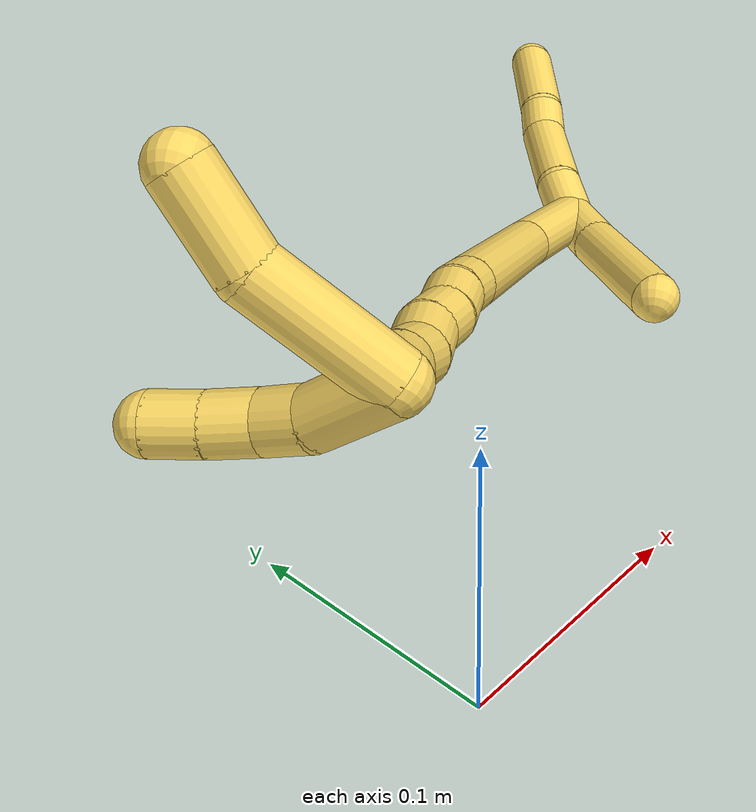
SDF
<sdf version="1.7">
 <world name="default">
  <model name="5">
   <static>0</static>
   <link name="5">
    <collision name="collision-cylinder-e_1_2_8">
     <pose>-0.004075 0.002929 0.01142 -0.251055 -0.332786 0.04238</pose>
     <geometry><cylinder><radius>0.0125</radius><length>0.024948</length></cylinder></geometry>
     <surface>
      <friction><ode><mu>1.16</mu><mu2>1.16</mu2><slip1>0</slip1><slip2>0</slip2></ode></friction>
      <contact><ode><kp>1e+06</kp><kd>1</kd><max_vel>0</max_vel><min_depth>0.001</min_depth></ode></contact>
     </surface>
    </collision>
    <visual name="visual-cylinder-e_1_2_8">
     <pose>-0.004075 0.002929 0.01142 -0.251055 -0.332786 0.04238</pose>
     <geometry><cylinder><radius>0.0125</radius><length>0.024948</length></cylinder></geometry>
     <material><ambient>1 0.858824 0.4 1</ambient></material>
    </visual>
    <collision name="collision-cylinder-e_2_8_9">
     <pose>-0.010412 0.015069 0.046278 -0.374459 -0.089606 0.016987</pose>
     <geometry><cylinder><radius>0.0125</radius><length>0.050569</length></cylinder></geometry>
     <surface>
      <friction><ode><mu>1.16</mu><mu2>1.16</mu2><slip1>0</slip1><slip2>0</slip2></ode></friction>
      <contact><ode><kp>1e+06</kp><kd>1</kd><max_vel>0</max_vel><min_depth>0.001</min_depth></ode></contact>
     </surface>
    </collision>
    <visual name="visual-cylinder-e_2_8_9">
     <pose>-0.010412 0.015069 0.046278 -0.374459 -0.089606 0.016987</pose>
     <geometry><cylinder><radius>0.0125</radius><length>0.050569</length></cylinder></geometry>
     <material><ambient>1 0.858824 0.4 1</ambient></material>
    </visual>
    <collision name="collision-cylinder-e_3_9_10">
     <pose>-0.014811 0.025063 0.079542 -0.079469 -0.213439 0.008518</pose>
     <geometry><cylinder><radius>0.0125</radius><length>0.020171</length></cylinder></geometry>
     <surface>
      <friction><ode><mu>1.16</mu><mu2>1.16</mu2><slip1>0</slip1><slip2>0</slip2></ode></friction>
      <contact><ode><kp>1e+06</kp><kd>1</kd><max_vel>0</max_vel><min_depth>0.001</min_depth></ode></contact>
     </surface>
    </collision>
    <visual name="visual-cylinder-e_3_9_10">
     <pose>-0.014811 0.025063 0.079542 -0.079469 -0.213439 0.008518</pose>
     <geometry><cylinder><radius>0.0125</radius><length>0.020171</length></cylinder></geometry>
     <material><ambient>1 0.858824 0.4 1</ambient></material>
    </visual>
    <collision name="collision-cylinder-e_4_10_6">
     <pose>-0.018999 0.0343 0.115092 -0.317541 -0.075608 0.012112</pose>
     <geometry><cylinder><radius>0.0125</radius><length>0.054312</length></cylinder></geometry>
     <surface>
      <friction><ode><mu>1.16</mu><mu2>1.16</mu2><slip1>0</slip1><slip2>0</slip2></ode></friction>
      <contact><ode><kp>1e+06</kp><kd>1</kd><max_vel>0</max_vel><min_depth>0.001</min_depth></ode></contact>
     </surface>
    </collision>
    <visual name="visual-cylinder-e_4_10_6">
     <pose>-0.018999 0.0343 0.115092 -0.317541 -0.075608 0.012112</pose>
     <geometry><cylinder><radius>0.0125</radius><length>0.054312</length></cylinder></geometry>
     <material><ambient>1 0.858824 0.4 1</ambient></material>
    </visual>
    <collision name="collision-cylinder-e_1_2_11">
     <pose>0.002988 -0.00934 -0.01261 2.5041 0.188141 0.556961</pose>
     <geometry><cylinder><radius>0.0125</radius><length>0.031948</length></cylinder></geometry>
     <surface>
      <friction><ode><mu>1.16</mu><mu2>1.16</mu2><slip1>0</slip1><slip2>0</slip2></ode></friction>
      <contact><ode><kp>1e+06</kp><kd>1</kd><max_vel>0</max_vel><min_depth>0.001</min_depth></ode></contact>
     </surface>
    </collision>
    <visual name="visual-cylinder-e_1_2_11">
     <pose>0.002988 -0.00934 -0.01261 2.5041 0.188141 0.556961</pose>
     <geometry><cylinder><radius>0.0125</radius><length>0.031948</length></cylinder></geometry>
     <material><ambient>1 0.858824 0.4 1</ambient></material>
    </visual>
    <collision name="collision-cylinder-e_2_11_5">
     <pose>0.010358 -0.040298 -0.051128 2.44621 0.129147 0.353131</pose>
     <geometry><cylinder><radius>0.0125</radius><length>0.068052</length></cylinder></geometry>
     <surface>
      <friction><ode><mu>1.16</mu><mu2>1.16</mu2><slip1>0</slip1><slip2>0</slip2></ode></friction>
      <contact><ode><kp>1e+06</kp><kd>1</kd><max_vel>0</max_vel><min_depth>0.001</min_depth></ode></contact>
     </surface>
    </collision>
    <visual name="visual-cylinder-e_2_11_5">
     <pose>0.010358 -0.040298 -0.051128 2.44621 0.129147 0.353131</pose>
     <geometry><cylinder><radius>0.0125</radius><length>0.068052</length></cylinder></geometry>
     <material><ambient>1 0.858824 0.4 1</ambient></material>
    </visual>
    <collision name="collision-cylinder-e_1_2_12">
     <pose>-0.018581 -0.009389 -0.025875 2.79351 -0.59377 -2.09836</pose>
     <geometry><cylinder><radius>0.0125</radius><length>0.066421</length></cylinder></geometry>
     <surface>
      <friction><ode><mu>1.16</mu><mu2>1.16</mu2><slip1>0</slip1><slip2>0</slip2></ode></friction>
      <contact><ode><kp>1e+06</kp><kd>1</kd><max_vel>0</max_vel><min_depth>0.001</min_depth></ode></contact>
     </surface>
    </collision>
    <visual name="visual-cylinder-e_1_2_12">
     <pose>-0.018581 -0.009389 -0.025875 2.79351 -0.59377 -2.09836</pose>
     <geometry><cylinder><radius>0.0125</radius><length>0.066421</length></cylinder></geometry>
     <material><ambient>1 0.858824 0.4 1</ambient></material>
    </visual>
    <collision name="collision-cylinder-e_2_12_13">
     <pose>-0.064494 -0.044605 -0.092433 2.57594 -0.515956 -1.47435</pose>
     <geometry><cylinder><radius>0.0125</radius><length>0.1108</length></cylinder></geometry>
     <surface>
      <friction><ode><mu>1.16</mu><mu2>1.16</mu2><slip1>0</slip1><slip2>0</slip2></ode></friction>
      <contact><ode><kp>1e+06</kp><kd>1</kd><max_vel>0</max_vel><min_depth>0.001</min_depth></ode></contact>
     </surface>
    </collision>
    <visual name="visual-cylinder-e_2_12_13">
     <pose>-0.064494 -0.044605 -0.092433 2.57594 -0.515956 -1.47435</pose>
     <geometry><cylinder><radius>0.0125</radius><length>0.1108</length></cylinder></geometry>
     <material><ambient>1 0.858824 0.4 1</ambient></material>
    </visual>
    <collision name="collision-cylinder-e_3_13_14">
     <pose>-0.096804 -0.075164 -0.140569 2.576 -0.513366 -1.46922</pose>
     <geometry><cylinder><radius>0.0125</radius><length>0.020271</length></cylinder></geometry>
     <surface>
      <friction><ode><mu>1.16</mu><mu2>1.16</mu2><slip1>0</slip1><slip2>0</slip2></ode></friction>
      <contact><ode><kp>1e+06</kp><kd>1</kd><max_vel>0</max_vel><min_depth>0.001</min_depth></ode></contact>
     </surface>
    </collision>
    <visual name="visual-cylinder-e_3_13_14">
     <pose>-0.096804 -0.075164 -0.140569 2.576 -0.513366 -1.46922</pose>
     <geometry><cylinder><radius>0.0125</radius><length>0.020271</length></cylinder></geometry>
     <material><ambient>1 0.858824 0.4 1</ambient></material>
    </visual>
    <collision name="collision-cylinder-e_4_14_15">
     <pose>-0.104903 -0.084221 -0.157046 2.69459 -0.302353 -1.1809</pose>
     <geometry><cylinder><radius>0.0125</radius><length>0.020963</length></cylinder></geometry>
     <surface>
      <friction><ode><mu>1.16</mu><mu2>1.16</mu2><slip1>0</slip1><slip2>0</slip2></ode></friction>
      <contact><ode><kp>1e+06</kp><kd>1</kd><max_vel>0</max_vel><min_depth>0.001</min_depth></ode></contact>
     </surface>
    </collision>
    <visual name="visual-cylinder-e_4_14_15">
     <pose>-0.104903 -0.084221 -0.157046 2.69459 -0.302353 -1.1809</pose>
     <geometry><cylinder><radius>0.0125</radius><length>0.020963</length></cylinder></geometry>
     <material><ambient>1 0.858824 0.4 1</ambient></material>
    </visual>
    <collision name="collision-cylinder-e_5_15_16">
     <pose>-0.113072 -0.092159 -0.173969 2.71272 -0.526418 -1.78212</pose>
     <geometry><cylinder><radius>0.0125</radius><length>0.020095</length></cylinder></geometry>
     <surface>
      <friction><ode><mu>1.16</mu><mu2>1.16</mu2><slip1>0</slip1><slip2>0</slip2></ode></friction>
      <contact><ode><kp>1e+06</kp><kd>1</kd><max_vel>0</max_vel><min_depth>0.001</min_depth></ode></contact>
     </surface>
    </collision>
    <visual name="visual-cylinder-e_5_15_16">
     <pose>-0.113072 -0.092159 -0.173969 2.71272 -0.526418 -1.78212</pose>
     <geometry><cylinder><radius>0.0125</radius><length>0.020095</length></cylinder></geometry>
     <material><ambient>1 0.858824 0.4 1</ambient></material>
    </visual>
    <collision name="collision-cylinder-e_6_16_17">
     <pose>-0.120938 -0.100377 -0.190695 2.66061 -0.275797 -1.02993</pose>
     <geometry><cylinder><radius>0.0125</radius><length>0.020692</length></cylinder></geometry>
     <surface>
      <friction><ode><mu>1.16</mu><mu2>1.16</mu2><slip1>0</slip1><slip2>0</slip2></ode></friction>
      <contact><ode><kp>1e+06</kp><kd>1</kd><max_vel>0</max_vel><min_depth>0.001</min_depth></ode></contact>
     </surface>
    </collision>
    <visual name="visual-cylinder-e_6_16_17">
     <pose>-0.120938 -0.100377 -0.190695 2.66061 -0.275797 -1.02993</pose>
     <geometry><cylinder><radius>0.0125</radius><length>0.020692</length></cylinder></geometry>
     <material><ambient>1 0.858824 0.4 1</ambient></material>
    </visual>
    <collision name="collision-cylinder-e_7_17_18">
     <pose>-0.129319 -0.110093 -0.206423 2.50428 -0.574814 -1.46121</pose>
     <geometry><cylinder><radius>0.0125</radius><length>0.020467</length></cylinder></geometry>
     <surface>
      <friction><ode><mu>1.16</mu><mu2>1.16</mu2><slip1>0</slip1><slip2>0</slip2></ode></friction>
      <contact><ode><kp>1e+06</kp><kd>1</kd><max_vel>0</max_vel><min_depth>0.001</min_depth></ode></contact>
     </surface>
    </collision>
    <visual name="visual-cylinder-e_7_17_18">
     <pose>-0.129319 -0.110093 -0.206423 2.50428 -0.574814 -1.46121</pose>
     <geometry><cylinder><radius>0.0125</radius><length>0.020467</length></cylinder></geometry>
     <material><ambient>1 0.858824 0.4 1</ambient></material>
    </visual>
    <collision name="collision-cylinder-e_8_18_1">
     <pose>-0.137337 -0.121708 -0.220716 2.41981 -0.244369 -0.629112</pose>
     <geometry><cylinder><radius>0.0125</radius><length>0.020292</length></cylinder></geometry>
     <surface>
      <friction><ode><mu>1.16</mu><mu2>1.16</mu2><slip1>0</slip1><slip2>0</slip2></ode></friction>
      <contact><ode><kp>1e+06</kp><kd>1</kd><max_vel>0</max_vel><min_depth>0.001</min_depth></ode></contact>
     </surface>
    </collision>
    <visual name="visual-cylinder-e_8_18_1">
     <pose>-0.137337 -0.121708 -0.220716 2.41981 -0.244369 -0.629112</pose>
     <geometry><cylinder><radius>0.0125</radius><length>0.020292</length></cylinder></geometry>
     <material><ambient>1 0.858824 0.4 1</ambient></material>
    </visual>
    <collision name="collision-cylinder-e_1_1_19">
     <pose>-0.169555 -0.127596 -0.221659 -0.095434 -1.35657 0.076924</pose>
     <geometry><cylinder><radius>0.0125</radius><length>0.060919</length></cylinder></geometry>
     <surface>
      <friction><ode><mu>1.16</mu><mu2>1.16</mu2><slip1>0</slip1><slip2>0</slip2></ode></friction>
      <contact><ode><kp>1e+06</kp><kd>1</kd><max_vel>0</max_vel><min_depth>0.001</min_depth></ode></contact>
     </surface>
    </collision>
    <visual name="visual-cylinder-e_1_1_19">
     <pose>-0.169555 -0.127596 -0.221659 -0.095434 -1.35657 0.076924</pose>
     <geometry><cylinder><radius>0.0125</radius><length>0.060919</length></cylinder></geometry>
     <material><ambient>1 0.858824 0.4 1</ambient></material>
    </visual>
    <collision name="collision-cylinder-e_2_19_4">
     <pose>-0.216172 -0.130039 -0.205811 0.31469 -1.04024 -0.181233</pose>
     <geometry><cylinder><radius>0.0125</radius><length>0.039081</length></cylinder></geometry>
     <surface>
      <friction><ode><mu>1.16</mu><mu2>1.16</mu2><slip1>0</slip1><slip2>0</slip2></ode></friction>
      <contact><ode><kp>1e+06</kp><kd>1</kd><max_vel>0</max_vel><min_depth>0.001</min_depth></ode></contact>
     </surface>
    </collision>
    <visual name="visual-cylinder-e_2_19_4">
     <pose>-0.216172 -0.130039 -0.205811 0.31469 -1.04024 -0.181233</pose>
     <geometry><cylinder><radius>0.0125</radius><length>0.039081</length></cylinder></geometry>
     <material><ambient>1 0.858824 0.4 1</ambient></material>
    </visual>
    <collision name="collision-cylinder-e_1_1_20">
     <pose>-0.145407 -0.110556 -0.231231 -1.74602 -0.303456 0.360738</pose>
     <geometry><cylinder><radius>0.0125</radius><length>0.037581</length></cylinder></geometry>
     <surface>
      <friction><ode><mu>1.16</mu><mu2>1.16</mu2><slip1>0</slip1><slip2>0</slip2></ode></friction>
      <contact><ode><kp>1e+06</kp><kd>1</kd><max_vel>0</max_vel><min_depth>0.001</min_depth></ode></contact>
     </surface>
    </collision>
    <visual name="visual-cylinder-e_1_1_20">
     <pose>-0.145407 -0.110556 -0.231231 -1.74602 -0.303456 0.360738</pose>
     <geometry><cylinder><radius>0.0125</radius><length>0.037581</length></cylinder></geometry>
     <material><ambient>1 0.858824 0.4 1</ambient></material>
    </visual>
    <collision name="collision-cylinder-e_2_20_21">
     <pose>-0.15628 -0.084278 -0.234404 -1.57624 -0.547721 0.550565</pose>
     <geometry><cylinder><radius>0.0125</radius><length>0.020194</length></cylinder></geometry>
     <surface>
      <friction><ode><mu>1.16</mu><mu2>1.16</mu2><slip1>0</slip1><slip2>0</slip2></ode></friction>
      <contact><ode><kp>1e+06</kp><kd>1</kd><max_vel>0</max_vel><min_depth>0.001</min_depth></ode></contact>
     </surface>
    </collision>
    <visual name="visual-cylinder-e_2_20_21">
     <pose>-0.15628 -0.084278 -0.234404 -1.57624 -0.547721 0.550565</pose>
     <geometry><cylinder><radius>0.0125</radius><length>0.020194</length></cylinder></geometry>
     <material><ambient>1 0.858824 0.4 1</ambient></material>
    </visual>
    <collision name="collision-cylinder-e_3_21_22">
     <pose>-0.169004 -0.068614 -0.235893 -1.7726 -0.804232 0.960783</pose>
     <geometry><cylinder><radius>0.0125</radius><length>0.020731</length></cylinder></geometry>
     <surface>
      <friction><ode><mu>1.16</mu><mu2>1.16</mu2><slip1>0</slip1><slip2>0</slip2></ode></friction>
      <contact><ode><kp>1e+06</kp><kd>1</kd><max_vel>0</max_vel><min_depth>0.001</min_depth></ode></contact>
     </surface>
    </collision>
    <visual name="visual-cylinder-e_3_21_22">
     <pose>-0.169004 -0.068614 -0.235893 -1.7726 -0.804232 0.960783</pose>
     <geometry><cylinder><radius>0.0125</radius><length>0.020731</length></cylinder></geometry>
     <material><ambient>1 0.858824 0.4 1</ambient></material>
    </visual>
    <collision name="collision-cylinder-e_4_22_3">
     <pose>-0.184578 -0.054611 -0.238496 -1.73629 -0.854695 0.986834</pose>
     <geometry><cylinder><radius>0.0125</radius><length>0.021493</length></cylinder></geometry>
     <surface>
      <friction><ode><mu>1.16</mu><mu2>1.16</mu2><slip1>0</slip1><slip2>0</slip2></ode></friction>
      <contact><ode><kp>1e+06</kp><kd>1</kd><max_vel>0</max_vel><min_depth>0.001</min_depth></ode></contact>
     </surface>
    </collision>
    <visual name="visual-cylinder-e_4_22_3">
     <pose>-0.184578 -0.054611 -0.238496 -1.73629 -0.854695 0.986834</pose>
     <geometry><cylinder><radius>0.0125</radius><length>0.021493</length></cylinder></geometry>
     <material><ambient>1 0.858824 0.4 1</ambient></material>
    </visual>
    <collision name="collision-sphere-3">
     <pose>-0.192685 -0.047653 -0.239658 0 -0 0</pose>
     <geometry><sphere><radius>0.0125</radius></sphere></geometry>
     <surface>
      <friction><ode><mu>1.16</mu><mu2>1.16</mu2><slip1>0</slip1><slip2>0</slip2></ode></friction>
      <contact><ode><kp>1e+06</kp><kd>1</kd><max_vel>0</max_vel><min_depth>0.001</min_depth></ode></contact>
     </surface>
    </collision>
    <visual name="visual-sphere-3">
     <pose>-0.192685 -0.047653 -0.239658 0 -0 0</pose>
     <geometry><sphere><radius>0.0125</radius></sphere></geometry>
     <material><ambient>1 0.858824 0.4 1</ambient></material>
    </visual>
    <collision name="collision-sphere-22">
     <pose>-0.176471 -0.061569 -0.237334 0 -0 0</pose>
     <geometry><sphere><radius>0.0125</radius></sphere></geometry>
     <surface>
      <friction><ode><mu>1.16</mu><mu2>1.16</mu2><slip1>0</slip1><slip2>0</slip2></ode></friction>
      <contact><ode><kp>1e+06</kp><kd>1</kd><max_vel>0</max_vel><min_depth>0.001</min_depth></ode></contact>
     </surface>
    </collision>
    <visual name="visual-sphere-22">
     <pose>-0.176471 -0.061569 -0.237334 0 -0 0</pose>
     <geometry><sphere><radius>0.0125</radius></sphere></geometry>
     <material><ambient>1 0.858824 0.4 1</ambient></material>
    </visual>
    <collision name="collision-sphere-21">
     <pose>-0.161538 -0.075658 -0.234451 0 -0 0</pose>
     <geometry><sphere><radius>0.0125</radius></sphere></geometry>
     <surface>
      <friction><ode><mu>1.16</mu><mu2>1.16</mu2><slip1>0</slip1><slip2>0</slip2></ode></friction>
      <contact><ode><kp>1e+06</kp><kd>1</kd><max_vel>0</max_vel><min_depth>0.001</min_depth></ode></contact>
     </surface>
    </collision>
    <visual name="visual-sphere-21">
     <pose>-0.161538 -0.075658 -0.234451 0 -0 0</pose>
     <geometry><sphere><radius>0.0125</radius></sphere></geometry>
     <material><ambient>1 0.858824 0.4 1</ambient></material>
    </visual>
    <collision name="collision-sphere-20">
     <pose>-0.151022 -0.092898 -0.234357 0 -0 0</pose>
     <geometry><sphere><radius>0.0125</radius></sphere></geometry>
     <surface>
      <friction><ode><mu>1.16</mu><mu2>1.16</mu2><slip1>0</slip1><slip2>0</slip2></ode></friction>
      <contact><ode><kp>1e+06</kp><kd>1</kd><max_vel>0</max_vel><min_depth>0.001</min_depth></ode></contact>
     </surface>
    </collision>
    <visual name="visual-sphere-20">
     <pose>-0.151022 -0.092898 -0.234357 0 -0 0</pose>
     <geometry><sphere><radius>0.0125</radius></sphere></geometry>
     <material><ambient>1 0.858824 0.4 1</ambient></material>
    </visual>
    <collision name="collision-sphere-4">
     <pose>-0.233027 -0.1331 -0.196409 0 -0 0</pose>
     <geometry><sphere><radius>0.0125</radius></sphere></geometry>
     <surface>
      <friction><ode><mu>1.16</mu><mu2>1.16</mu2><slip1>0</slip1><slip2>0</slip2></ode></friction>
      <contact><ode><kp>1e+06</kp><kd>1</kd><max_vel>0</max_vel><min_depth>0.001</min_depth></ode></contact>
     </surface>
    </collision>
    <visual name="visual-sphere-4">
     <pose>-0.233027 -0.1331 -0.196409 0 -0 0</pose>
     <geometry><sphere><radius>0.0125</radius></sphere></geometry>
     <material><ambient>1 0.858824 0.4 1</ambient></material>
    </visual>
    <collision name="collision-sphere-11">
     <pose>0.005975 -0.018679 -0.02522 0 -0 0</pose>
     <geometry><sphere><radius>0.0125</radius></sphere></geometry>
     <surface>
      <friction><ode><mu>1.16</mu><mu2>1.16</mu2><slip1>0</slip1><slip2>0</slip2></ode></friction>
      <contact><ode><kp>1e+06</kp><kd>1</kd><max_vel>0</max_vel><min_depth>0.001</min_depth></ode></contact>
     </surface>
    </collision>
    <visual name="visual-sphere-11">
     <pose>0.005975 -0.018679 -0.02522 0 -0 0</pose>
     <geometry><sphere><radius>0.0125</radius></sphere></geometry>
     <material><ambient>1 0.858824 0.4 1</ambient></material>
    </visual>
    <collision name="collision-sphere-6">
     <pose>-0.02105 0.042754 0.140816 0 -0 0</pose>
     <geometry><sphere><radius>0.0125</radius></sphere></geometry>
     <surface>
      <friction><ode><mu>1.16</mu><mu2>1.16</mu2><slip1>0</slip1><slip2>0</slip2></ode></friction>
      <contact><ode><kp>1e+06</kp><kd>1</kd><max_vel>0</max_vel><min_depth>0.001</min_depth></ode></contact>
     </surface>
    </collision>
    <visual name="visual-sphere-6">
     <pose>-0.02105 0.042754 0.140816 0 -0 0</pose>
     <geometry><sphere><radius>0.0125</radius></sphere></geometry>
     <material><ambient>1 0.858824 0.4 1</ambient></material>
    </visual>
    <collision name="collision-sphere-10">
     <pose>-0.016948 0.025845 0.089367 0 -0 0</pose>
     <geometry><sphere><radius>0.0125</radius></sphere></geometry>
     <surface>
      <friction><ode><mu>1.16</mu><mu2>1.16</mu2><slip1>0</slip1><slip2>0</slip2></ode></friction>
      <contact><ode><kp>1e+06</kp><kd>1</kd><max_vel>0</max_vel><min_depth>0.001</min_depth></ode></contact>
     </surface>
    </collision>
    <visual name="visual-sphere-10">
     <pose>-0.016948 0.025845 0.089367 0 -0 0</pose>
     <geometry><sphere><radius>0.0125</radius></sphere></geometry>
     <material><ambient>1 0.858824 0.4 1</ambient></material>
    </visual>
    <collision name="collision-sphere-9">
     <pose>-0.012675 0.02428 0.069716 0 -0 0</pose>
     <geometry><sphere><radius>0.0125</radius></sphere></geometry>
     <surface>
      <friction><ode><mu>1.16</mu><mu2>1.16</mu2><slip1>0</slip1><slip2>0</slip2></ode></friction>
      <contact><ode><kp>1e+06</kp><kd>1</kd><max_vel>0</max_vel><min_depth>0.001</min_depth></ode></contact>
     </surface>
    </collision>
    <visual name="visual-sphere-9">
     <pose>-0.012675 0.02428 0.069716 0 -0 0</pose>
     <geometry><sphere><radius>0.0125</radius></sphere></geometry>
     <material><ambient>1 0.858824 0.4 1</ambient></material>
    </visual>
    <collision name="collision-sphere-2">
     <geometry><sphere><radius>0.0125</radius></sphere></geometry>
     <surface>
      <friction><ode><mu>1.16</mu><mu2>1.16</mu2><slip1>0</slip1><slip2>0</slip2></ode></friction>
      <contact><ode><kp>1e+06</kp><kd>1</kd><max_vel>0</max_vel><min_depth>0.001</min_depth></ode></contact>
     </surface>
    </collision>
    <visual name="visual-sphere-2">
     <geometry><sphere><radius>0.0125</radius></sphere></geometry>
     <material><ambient>1 0.858824 0.4 1</ambient></material>
    </visual>
    <collision name="collision-sphere-19">
     <pose>-0.199318 -0.126979 -0.215213 0 -0 0</pose>
     <geometry><sphere><radius>0.0125</radius></sphere></geometry>
     <surface>
      <friction><ode><mu>1.16</mu><mu2>1.16</mu2><slip1>0</slip1><slip2>0</slip2></ode></friction>
      <contact><ode><kp>1e+06</kp><kd>1</kd><max_vel>0</max_vel><min_depth>0.001</min_depth></ode></contact>
     </surface>
    </collision>
    <visual name="visual-sphere-19">
     <pose>-0.199318 -0.126979 -0.215213 0 -0 0</pose>
     <geometry><sphere><radius>0.0125</radius></sphere></geometry>
     <material><ambient>1 0.858824 0.4 1</ambient></material>
    </visual>
    <collision name="collision-sphere-8">
     <pose>-0.00815 0.005858 0.02284 0 -0 0</pose>
     <geometry><sphere><radius>0.0125</radius></sphere></geometry>
     <surface>
      <friction><ode><mu>1.16</mu><mu2>1.16</mu2><slip1>0</slip1><slip2>0</slip2></ode></friction>
      <contact><ode><kp>1e+06</kp><kd>1</kd><max_vel>0</max_vel><min_depth>0.001</min_depth></ode></contact>
     </surface>
    </collision>
    <visual name="visual-sphere-8">
     <pose>-0.00815 0.005858 0.02284 0 -0 0</pose>
     <geometry><sphere><radius>0.0125</radius></sphere></geometry>
     <material><ambient>1 0.858824 0.4 1</ambient></material>
    </visual>
    <collision name="collision-sphere-5">
     <pose>0.01474 -0.061916 -0.077036 0 -0 0</pose>
     <geometry><sphere><radius>0.0125</radius></sphere></geometry>
     <surface>
      <friction><ode><mu>1.16</mu><mu2>1.16</mu2><slip1>0</slip1><slip2>0</slip2></ode></friction>
      <contact><ode><kp>1e+06</kp><kd>1</kd><max_vel>0</max_vel><min_depth>0.001</min_depth></ode></contact>
     </surface>
    </collision>
    <visual name="visual-sphere-5">
     <pose>0.01474 -0.061916 -0.077036 0 -0 0</pose>
     <geometry><sphere><radius>0.0125</radius></sphere></geometry>
     <material><ambient>1 0.858824 0.4 1</ambient></material>
    </visual>
    <collision name="collision-sphere-12">
     <pose>-0.037162 -0.018778 -0.051751 0 -0 0</pose>
     <geometry><sphere><radius>0.0125</radius></sphere></geometry>
     <surface>
      <friction><ode><mu>1.16</mu><mu2>1.16</mu2><slip1>0</slip1><slip2>0</slip2></ode></friction>
      <contact><ode><kp>1e+06</kp><kd>1</kd><max_vel>0</max_vel><min_depth>0.001</min_depth></ode></contact>
     </surface>
    </collision>
    <visual name="visual-sphere-12">
     <pose>-0.037162 -0.018778 -0.051751 0 -0 0</pose>
     <geometry><sphere><radius>0.0125</radius></sphere></geometry>
     <material><ambient>1 0.858824 0.4 1</ambient></material>
    </visual>
    <collision name="collision-sphere-13">
     <pose>-0.091827 -0.070432 -0.133115 0 -0 0</pose>
     <geometry><sphere><radius>0.0125</radius></sphere></geometry>
     <surface>
      <friction><ode><mu>1.16</mu><mu2>1.16</mu2><slip1>0</slip1><slip2>0</slip2></ode></friction>
      <contact><ode><kp>1e+06</kp><kd>1</kd><max_vel>0</max_vel><min_depth>0.001</min_depth></ode></contact>
     </surface>
    </collision>
    <visual name="visual-sphere-13">
     <pose>-0.091827 -0.070432 -0.133115 0 -0 0</pose>
     <geometry><sphere><radius>0.0125</radius></sphere></geometry>
     <material><ambient>1 0.858824 0.4 1</ambient></material>
    </visual>
    <collision name="collision-sphere-14">
     <pose>-0.101782 -0.079896 -0.148023 0 -0 0</pose>
     <geometry><sphere><radius>0.0125</radius></sphere></geometry>
     <surface>
      <friction><ode><mu>1.16</mu><mu2>1.16</mu2><slip1>0</slip1><slip2>0</slip2></ode></friction>
      <contact><ode><kp>1e+06</kp><kd>1</kd><max_vel>0</max_vel><min_depth>0.001</min_depth></ode></contact>
     </surface>
    </collision>
    <visual name="visual-sphere-14">
     <pose>-0.101782 -0.079896 -0.148023 0 -0 0</pose>
     <geometry><sphere><radius>0.0125</radius></sphere></geometry>
     <material><ambient>1 0.858824 0.4 1</ambient></material>
    </visual>
    <collision name="collision-sphere-15">
     <pose>-0.108024 -0.088546 -0.166069 0 -0 0</pose>
     <geometry><sphere><radius>0.0125</radius></sphere></geometry>
     <surface>
      <friction><ode><mu>1.16</mu><mu2>1.16</mu2><slip1>0</slip1><slip2>0</slip2></ode></friction>
      <contact><ode><kp>1e+06</kp><kd>1</kd><max_vel>0</max_vel><min_depth>0.001</min_depth></ode></contact>
     </surface>
    </collision>
    <visual name="visual-sphere-15">
     <pose>-0.108024 -0.088546 -0.166069 0 -0 0</pose>
     <geometry><sphere><radius>0.0125</radius></sphere></geometry>
     <material><ambient>1 0.858824 0.4 1</ambient></material>
    </visual>
    <collision name="collision-sphere-16">
     <pose>-0.118121 -0.095771 -0.18187 0 -0 0</pose>
     <geometry><sphere><radius>0.0125</radius></sphere></geometry>
     <surface>
      <friction><ode><mu>1.16</mu><mu2>1.16</mu2><slip1>0</slip1><slip2>0</slip2></ode></friction>
      <contact><ode><kp>1e+06</kp><kd>1</kd><max_vel>0</max_vel><min_depth>0.001</min_depth></ode></contact>
     </surface>
    </collision>
    <visual name="visual-sphere-16">
     <pose>-0.118121 -0.095771 -0.18187 0 -0 0</pose>
     <geometry><sphere><radius>0.0125</radius></sphere></geometry>
     <material><ambient>1 0.858824 0.4 1</ambient></material>
    </visual>
    <collision name="collision-sphere-17">
     <pose>-0.123755 -0.104982 -0.19952 0 -0 0</pose>
     <geometry><sphere><radius>0.0125</radius></sphere></geometry>
     <surface>
      <friction><ode><mu>1.16</mu><mu2>1.16</mu2><slip1>0</slip1><slip2>0</slip2></ode></friction>
      <contact><ode><kp>1e+06</kp><kd>1</kd><max_vel>0</max_vel><min_depth>0.001</min_depth></ode></contact>
     </surface>
    </collision>
    <visual name="visual-sphere-17">
     <pose>-0.123755 -0.104982 -0.19952 0 -0 0</pose>
     <geometry><sphere><radius>0.0125</radius></sphere></geometry>
     <material><ambient>1 0.858824 0.4 1</ambient></material>
    </visual>
    <collision name="collision-sphere-18">
     <pose>-0.134882 -0.115204 -0.213326 0 -0 0</pose>
     <geometry><sphere><radius>0.0125</radius></sphere></geometry>
     <surface>
      <friction><ode><mu>1.16</mu><mu2>1.16</mu2><slip1>0</slip1><slip2>0</slip2></ode></friction>
      <contact><ode><kp>1e+06</kp><kd>1</kd><max_vel>0</max_vel><min_depth>0.001</min_depth></ode></contact>
     </surface>
    </collision>
    <visual name="visual-sphere-18">
     <pose>-0.134882 -0.115204 -0.213326 0 -0 0</pose>
     <geometry><sphere><radius>0.0125</radius></sphere></geometry>
     <material><ambient>1 0.858824 0.4 1</ambient></material>
    </visual>
    <collision name="collision-sphere-1">
     <pose>-0.139792 -0.128213 -0.228105 0 -0 0</pose>
     <geometry><sphere><radius>0.0125</radius></sphere></geometry>
     <surface>
      <friction><ode><mu>1.16</mu><mu2>1.16</mu2><slip1>0</slip1><slip2>0</slip2></ode></friction>
      <contact><ode><kp>1e+06</kp><kd>1</kd><max_vel>0</max_vel><min_depth>0.001</min_depth></ode></contact>
     </surface>
    </collision>
    <visual name="visual-sphere-1">
     <pose>-0.139792 -0.128213 -0.228105 0 -0 0</pose>
     <geometry><sphere><radius>0.0125</radius></sphere></geometry>
     <material><ambient>1 0.858824 0.4 1</ambient></material>
    </visual>
    <inertial>
     <pose>-0.078369 -0.051536 -0.096847 0 -0 0</pose>
     <mass>0.75</mass>
     <inertia>
      <ixx>-5.6e-05</ixx>
      <ixy>0</ixy>
      <ixz>0</ixz>
      <iyy>-4.2e-05</iyy>
      <iyz>0</iyz>
      <izz>0.000165</izz>
     </inertia>
    </inertial>
   </link>
   <pose>0.288608 0.179584 0.01281 -1.01504 0.610726 -0.704735</pose>
  </model>
 </world>
</sdf>
